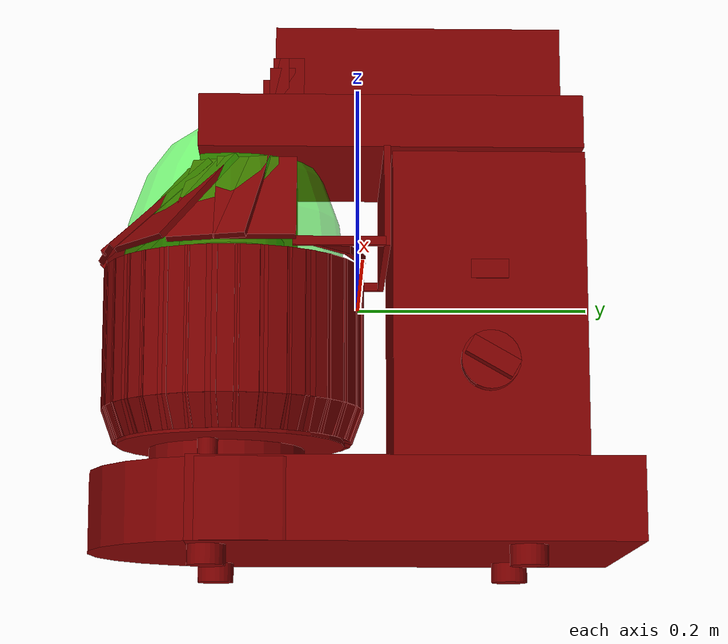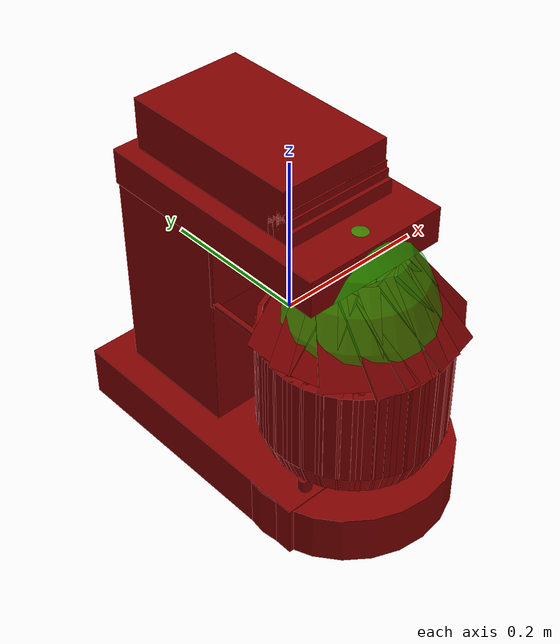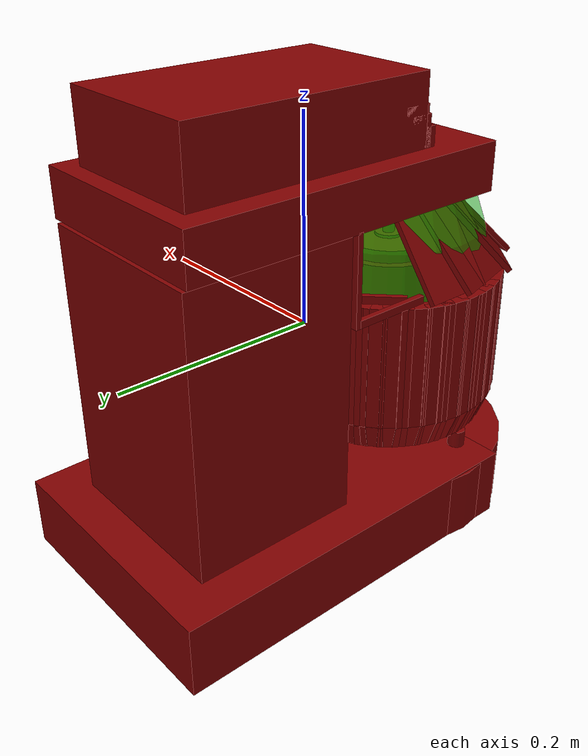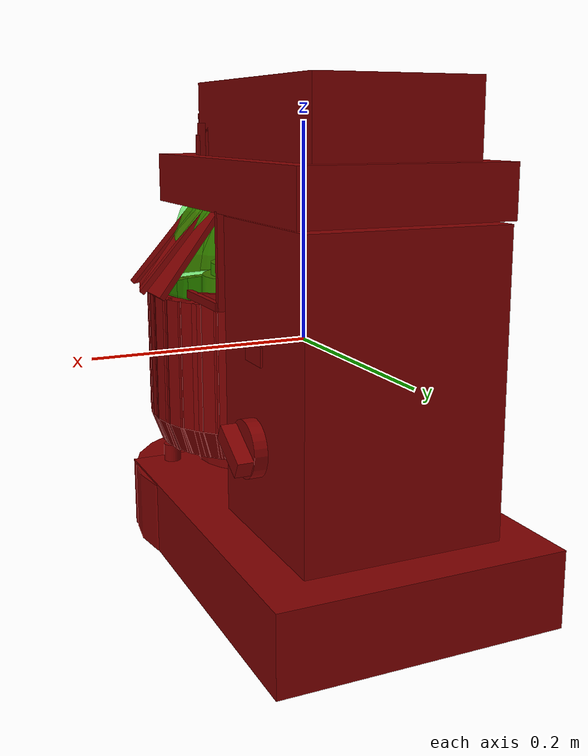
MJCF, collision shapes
<?xml version='1.0' encoding='UTF-8'?>
<mujoco model="model">
  <option timestep="0.002" gravity="0.0 0.0 -9.81"/>
  <compiler angle="radian"/>
  <asset>
    <mesh file="visuals/blender.obj" name="blender_vis"/>
    <mesh file="visuals/bowl.obj" name="bowl_vis"/>
    <mesh file="visuals/button_head_lock.obj" name="button_head_lock_vis"/>
    <mesh file="visuals/head.obj" name="head_vis"/>
    <mesh file="visuals/knob_speed.obj" name="knob_speed_vis"/>
    <mesh file="visuals/Body001.obj" name="Body001_vis"/>
    <texture file="visuals/T_BC001.png" name="Body001_material" type="2d"/>
    <material name="Body001_material" rgba="1 1 1 1.0" texture="Body001_material" shininess="0.4472135901451111" specular="0.3103448502657381"/>
    <texture file="visuals/T_BC001.png" name="bowl_material" type="2d"/>
    <material name="bowl_material" rgba="1 1 1 1.0" texture="bowl_material" shininess="1" specular="1"/>
    <texture file="visuals/T_BC001.png" name="button_head_lock_material" type="2d"/>
    <material name="button_head_lock_material" rgba="1 1 1 1.0" texture="button_head_lock_material" shininess="0.4472135901451111" specular="0.3103448502657381"/>
    <texture file="visuals/T_BC001.png" name="head_material" type="2d"/>
    <material name="head_material" rgba="1 1 1 1.0" texture="head_material" shininess="0.4472135901451111" specular="0.3103448502657381"/>
    <texture file="visuals/T_BC001.png" name="blender_material" type="2d"/>
    <material name="blender_material" rgba="1 1 1 1.0" texture="blender_material" shininess="1" specular="1"/>
    <texture file="visuals/T_BC001.png" name="knob_speed_material" type="2d"/>
    <material name="knob_speed_material" rgba="1 1 1 1.0" texture="knob_speed_material" shininess="0.4472135901451111" specular="0.3103448502657381"/>
  </asset>
  <default>
    <default class="visual">
      <geom conaffinity="0" contype="0" group="1" type="mesh"/>
    </default>
    <default class="collision">
      <geom group="0" rgba="0.5 0 0 0.5"/>
    </default>
    <default class="spawn">
      <geom group="0" rgba="1 1 1 0.5" contype="0" conaffinity="0"/>
      <site group="0" rgba="1 1 1 0.5"/>
    </default>
    <default class="region">
      <geom group="1" conaffinity="0" contype="0" rgba="0 1 0 0"/>
    </default>
  </default>
  <worldbody>
    <body>
      <body name="object">
        <geom mesh="Body001_vis" type="mesh" solimp="0.998 0.998 0.001" solref="0.001 1" friction="0.95 0.3 0.1" class="visual" material="Body001_material"/>
        <geom type="box" pos="-0.0020150209311395884 0.10966469347476959 -0.011680183932185173" size="0.09030012786388397 0.0818587988615036 0.13259609043598175" quat="1.0 0.0 0.0 0.0" class="collision"/>
        <geom type="cylinder" pos="-0.09157982468605042 -0.12557129561901093 -0.21869555115699768" size="0.01601528935134411 0.011921694502234459" quat="1.0 0.0 0.0 0.0" class="collision"/>
        <geom type="cylinder" pos="-0.09157982468605042 0.13837343454360962 -0.21869555115699768" size="0.01601528935134411 0.011921694502234459" quat="1.0 0.0 0.0 0.0" class="collision"/>
        <geom type="cylinder" pos="0.0929291695356369 0.13837343454360962 -0.21869555115699768" size="0.01601528935134411 0.011921694502234459" quat="1.0 0.0 0.0 0.0" class="collision"/>
        <geom type="cylinder" pos="0.0929291695356369 -0.12557129561901093 -0.21869555115699768" size="0.01601528935134411 0.011921694502234459" quat="1.0 0.0 0.0 0.0" class="collision"/>
        <geom type="cylinder" pos="-0.09143412858247757 -0.12539009749889374 -0.1359458714723587" size="0.008488369174301624 0.009389183484017849" quat="1.0 0.0 0.0 0.0" class="collision"/>
        <geom type="cylinder" pos="0.09264079481363297 -0.12539009749889374 -0.1359458714723587" size="0.008488369174301624 0.009389183484017849" quat="1.0 0.0 0.0 0.0" class="collision"/>
        <geom type="cylinder" pos="-0.00843361858278513 -0.12539009749889374 -0.1359458714723587" size="0.008488369174301624 0.009389183484017849" quat="1.0 0.0 0.0 0.0" class="collision"/>
        <geom type="cylinder" pos="-0.001985041191801429 -0.11356186866760254 -0.14867164194583893" size="0.06737740337848663 0.02544773928821087" quat="1.0 0.0 0.0 0.0" class="collision"/>
        <geom type="box" pos="-0.0006400577840395272 0.04438207298517227 -0.178863063454628" size="0.1297663003206253 0.18647709488868713 0.03476670756936073" quat="1.0 0.0 0.0 0.0" class="collision"/>
        <geom type="cylinder" pos="0.0007358510629273951 -0.09750024229288101 -0.17969581484794617" size="0.13394969701766968 0.033853307366371155" quat="1.0 0.0 0.0 0.0" class="collision"/>
        <body name="bowl">
          <geom mesh="bowl_vis" type="mesh" solimp="0.998 0.998 0.001" solref="0.001 1" friction="0.95 0.3 0.1" class="visual" material="bowl_material"/>
          <geom type="box" pos="0.10189328342676163 -0.11322380602359772 -0.10233451426029205" size="0.013965840451419353 0.0066327000968158245 0.015045318752527237" quat="0.7120574712753296 0.12730690836906433 0.12152275443077087 0.6797053217887878" class="collision"/>
          <geom type="box" pos="0.09313759207725525 -0.1500387042760849 -0.10233451426029205" size="0.013965838588774204 0.00663269916549325 0.015045315958559513" quat="0.8260143995285034 0.14768095314502716 0.09573482722043991 0.5354674458503723" class="collision"/>
          <geom type="box" pos="0.09738185256719589 -0.1519366353750229 -0.028676670044660568" size="0.01396583765745163 0.006632702890783548 0.06229601800441742" quat="0.8391123414039612 0.0 0.0 0.5439581871032715" class="collision"/>
          <geom type="cylinder" pos="0.00023518240777775645 -0.11029031872749329 -0.11285266280174255" size="0.09875737875699997 0.00806751474738121" quat="1.0 0.0 0.0 0.0" class="collision"/>
          <geom type="box" pos="0.021402928978204727 -0.20803727209568024 -0.10233448445796967" size="0.013965836726129055 0.00663269916549325 0.015045316889882088" quat="0.9789935350418091 0.1750316321849823 0.018404554575681686 0.10294099152088165" class="collision"/>
          <geom type="box" pos="0.06026076897978783 -0.1963675171136856 -0.028676670044660568" size="0.01396583765745163 0.006632702890783548 0.06229601800441742" quat="0.9554409384727478 0.0 0.0 0.29518234729766846" class="collision"/>
          <geom type="box" pos="0.05763828754425049 -0.19252844154834747 -0.10233451426029205" size="0.013965838588774204 0.006632699631154537 0.015045318752527237" quat="0.9405272603034973 0.16815443336963654 0.05195111781358719 0.2905747592449188" class="collision"/>
          <geom type="box" pos="0.08464417606592178 -0.1653444468975067 -0.10233451426029205" size="0.013965838588774204 0.0066327000968158245 0.015045316889882088" quat="0.8690050840377808 0.15536712110042572 0.08267930895090103 0.4624449908733368" class="collision"/>
          <geom type="box" pos="0.08850041776895523 -0.1679416447877884 -0.028676670044660568" size="0.01396583765745163 0.006632702890783548 0.06229601800441742" quat="0.8827846646308899 0.0 0.0 0.469777911901474" class="collision"/>
          <geom type="box" pos="0.10429301112890244 -0.13077999651432037 -0.028676677495241165" size="0.013965839520096779 0.006632703822106123 0.06229601800441742" quat="0.7776281237602234 0.0 0.0 0.6287245154380798" class="collision"/>
          <geom type="box" pos="0.09974677860736847 -0.12980639934539795 -0.10233451426029205" size="0.01396583765745163 0.006632699631154537 0.015045315958559513" quat="0.765489935874939 0.1368599534034729 0.11065340042114258 0.6189106106758118" class="collision"/>
          <geom type="box" pos="0.10065349191427231 -0.09197548031806946 -0.10233451426029205" size="0.013965839520096779 0.006632699631154537 0.015045316889882088" quat="0.6370744109153748 0.11390084028244019 0.1341693252325058 0.750440776348114" class="collision"/>
          <geom type="box" pos="0.10524114221334457 -0.09122078120708466 -0.028676670044660568" size="0.013965841382741928 0.00663270428776741 0.06229601800441742" quat="0.6471763253211975 0.0 0.0 0.7623403668403625" class="collision"/>
          <geom type="box" pos="0.07420507073402405 -0.18500061333179474 -0.028676670044660568" size="0.013965839520096779 0.006632703822106123 0.06229601800441742" quat="0.9270707368850708 0.0 0.0 0.3748863935470581" class="collision"/>
          <geom type="box" pos="0.0904875099658966 -0.0521109402179718 -0.028676670044660568" size="0.013965836726129055 0.006632702425122261 0.06229601800441742" quat="0.4848506450653076 0.0 0.0 0.8745969533920288" class="collision"/>
          <geom type="box" pos="0.08654442429542542 -0.05457431823015213 -0.10233451426029205" size="0.01396583765745163 0.006632699631154537 0.015045316889882088" quat="0.4772825241088867 0.08533207327127457 0.15392613410949707 0.8609451651573181" class="collision"/>
          <geom type="box" pos="0.022369982674717903 -0.21258492767810822 -0.028676670044660568" size="0.013965839520096779 0.006632703822106123 0.06229601800441742" quat="0.9945171475410461 0.0 0.0 0.10457359999418259" class="collision"/>
          <geom type="box" pos="0.061737511307001114 -0.02741362899541855 -0.10233451426029205" size="0.013965836726129055 0.0066327000968158245 0.015045316889882088" quat="0.3138279318809509 0.056108467280864716 0.1668132245540619 0.9330258369445801" class="collision"/>
          <geom type="box" pos="0.06454727053642273 -0.023709386587142944 -0.028676677495241165" size="0.013965836726129055 0.006632702425122261 0.06229601800441742" quat="0.31880423426628113 0.0 0.0 0.9478206038475037" class="collision"/>
          <geom type="box" pos="0.026318933814764023 -0.005323871970176697 -0.028676670044660568" size="0.01396583765745163 0.006632702890783548 0.06229601800441742" quat="0.12349949777126312 0.0 0.0 0.9923446178436279" class="collision"/>
          <geom type="box" pos="0.025179345160722733 -0.009831339120864868 -0.10233451426029205" size="0.01396583765745163 0.006632698699831963 0.015045315958559513" quat="0.12157176434993744 0.02173551917076111 0.17464932799339294 0.9768549203872681" class="collision"/>
          <geom type="box" pos="-0.012225277721881866 -0.007492713630199432 -0.10233451426029205" size="0.013965840451419353 0.006632700562477112 0.015045315958559513" quat="0.06037798523902893 0.010794822126626968 -0.17566528916358948 -0.9825373888015747" class="collision"/>
          <geom type="box" pos="-0.012794534675776958 -0.0028783977031707764 -0.028676670044660568" size="0.013965840451419353 0.006632703822106123 0.06229601800441742" quat="0.061335381120443344 0.0 0.0 -0.998117208480835" class="collision"/>
          <geom type="box" pos="-0.05263176187872887 -0.0161384716629982 -0.028676677495241165" size="0.013965838588774204 0.006632703356444836 0.06229601800441742" quat="0.25702959299087524 0.0 0.0 -0.9664035439491272" class="collision"/>
          <geom type="box" pos="0.07097336649894714 -0.18165814876556396 -0.10233451426029205" size="0.013965836726129055 0.0066327000968158245 0.015045316889882088" quat="0.9125999212265015 0.16316133737564087 0.0659787505865097 0.36903467774391174" class="collision"/>
          <geom type="box" pos="-0.0503220334649086 -0.020173467695713043 -0.10233451426029205" size="0.013965840451419353 0.0066327000968158245 0.015045316889882088" quat="0.2530176639556885 0.04523634538054466 -0.17008377611637115 -0.9513186812400818" class="collision"/>
          <geom type="box" pos="-0.07794873416423798 -0.04334898293018341 -0.10233451426029205" size="0.013965839520096779 0.0066327000968158245 0.015045316889882088" quat="0.417558878660202 0.07465425878763199 -0.15937866270542145 -0.8914425373077393" class="collision"/>
          <geom type="box" pos="-0.08152057975530624 -0.04037274420261383 -0.028676670044660568" size="0.013965839520096779 0.006632703822106123 0.06229601800441742" quat="0.4241800010204315 0.0 0.0 -0.9055778980255127" class="collision"/>
          <geom type="box" pos="-0.10010028630495071 -0.07303456962108612 -0.028676670044660568" size="0.013965836726129055 0.006632702425122261 0.06229601800441742" quat="0.5773990154266357 0.0 0.0 -0.8164620995521545" class="collision"/>
          <geom type="box" pos="-0.095716692507267 -0.07458384335041046 -0.10233451426029205" size="0.013965836726129055 0.0066327000968158245 0.015045316889882088" quat="0.5683863162994385 0.10162027180194855 -0.14369459450244904 -0.8037177324295044" class="collision"/>
          <geom type="box" pos="-0.10152013599872589 -0.11010442674160004 -0.10233451426029205" size="0.013965838588774204 0.006632700562477112 0.015045316889882088" quat="0.7015516757965088 0.12542855739593506 -0.12346050143241882 -0.6905435919761658" class="collision"/>
          <geom type="box" pos="-0.10616885870695114 -0.11017793416976929 -0.028676670044660568" size="0.013965838588774204 0.006632703356444836 0.06229601800441742" quat="0.712675929069519 0.0 0.0 -0.7014934420585632" class="collision"/>
          <geom type="box" pos="-0.09911313652992249 -0.1466338187456131 -0.028676670044660568" size="0.013965840451419353 0.006632703822106123 0.06229601800441742" quat="0.8241325616836548 0.0 0.0 -0.5663970112800598" class="collision"/>
          <geom type="box" pos="-0.09477266669273376 -0.14496755599975586 -0.10233451426029205" size="0.013965836726129055 0.006632699631154537 0.015045318752527237" quat="0.8112683892250061 0.14504455029964447 -0.09968403726816177 -0.5575560927391052" class="collision"/>
          <geom type="box" pos="-0.074417345225811 -0.17765958607196808 -0.10233451426029205" size="0.013965839520096779 0.0066327000968158245 0.015045316889882088" quat="0.9021095633506775 0.16128577291965485 -0.0704394057393074 -0.39398422837257385" class="collision"/>
          <geom type="box" pos="0.03890387341380119 -0.202630415558815 -0.10233448445796967" size="0.013965840451419353 0.006632699631154537 0.015045318752527237" quat="0.965756893157959 0.17266513407230377 0.03408178314566612 0.19062745571136475" class="collision"/>
          <geom type="box" pos="-0.07782787829637527 -0.18081939220428467 -0.028676677495241165" size="0.013965838588774204 0.006632703356444836 0.06229601800441742" quat="0.9164140224456787 0.0 0.0 -0.40023157000541687" class="collision"/>
          <geom type="box" pos="-0.048105597496032715 -0.2032991498708725 -0.028676670044660568" size="0.01396583765745163 0.006632702890783548 0.06229601800441742" quat="0.9723350405693054 0.0 0.0 -0.23359063267707825" class="collision"/>
          <geom type="box" pos="-0.045993611216545105 -0.19915719330310822 -0.10233451426029205" size="0.013965839520096779 0.006632700562477112 0.015045318752527237" quat="0.9571576714515686 0.17112773656845093 -0.04111115261912346 -0.2299443483352661" class="collision"/>
          <geom type="box" pos="-0.014120768755674362 -0.20924539864063263 -0.10233451426029205" size="0.013965841382741928 0.006632700562477112 0.015045318752527237" quat="0.9819267988204956 0.17555609345436096 -0.012444666586816311 -0.06960588693618774" class="collision"/>
          <geom type="box" pos="-0.014776633121073246 -0.21384824812412262 -0.028676670044660568" size="0.01396583765745163 0.006632702890783548 0.06229601800441742" quat="0.9974969625473022 0.0 0.0 -0.07070967555046082" class="collision"/>
          <geom type="box" pos="-0.036361776292324066 -0.20842157304286957 -0.028676677495241165" size="0.013965838588774204 0.006632703356444836 0.06229601800441742" quat="0.9846334457397461 0.0 0.0 -0.1746336817741394" class="collision"/>
          <geom type="box" pos="-0.03476287052035332 -0.20405586063861847 -0.10233451426029205" size="0.013965836726129055 0.00663269916549325 0.015045317821204662" quat="0.9692639708518982 0.17329254746437073 -0.030735071748495102 -0.17190803587436676" class="collision"/>
          <geom type="box" pos="-0.06384027004241943 -0.18755872547626495 -0.10233451426029205" size="0.013965839520096779 0.0066327000968158245 0.015045320615172386" quat="0.927863597869873 0.16589036583900452 -0.05878116562962532 -0.3287770748138428" class="collision"/>
          <geom type="box" pos="-0.06676758825778961 -0.1911708265542984 -0.028676677495241165" size="0.01396583765745163 0.006632702890783548 0.06229601800441742" quat="0.9425765872001648 0.0 0.0 -0.3339901566505432" class="collision"/>
          <geom type="box" pos="-0.0911640077829361 -0.1630004495382309 -0.028676670044660568" size="0.013965839520096779 0.006632703822106123 0.06229601800441742" quat="0.8695359230041504 0.0 0.0 -0.49386975169181824" class="collision"/>
          <geom type="box" pos="0.04067046567797661 -0.206931009888649 -0.028676677495241165" size="0.013965839520096779 0.006632703822106123 0.06229601800441742" quat="0.9810706377029419 0.0 0.0 0.19365014135837555" class="collision"/>
          <geom type="box" pos="-0.08717083185911179 -0.16061915457248688 -0.10233451426029205" size="0.013965839520096779 0.006632699631154537 0.015045316889882088" quat="0.8559631109237671 0.15303540229797363 -0.08691941201686859 -0.4861608147621155" class="collision"/>
          <geom type="box" pos="-0.1002810150384903 -0.12440823018550873 -0.10233451426029205" size="0.013965836726129055 0.006632701028138399 0.015045316889882088" quat="0.7485148310661316 0.13382500410079956 -0.11430522799491882 -0.6393361687660217" class="collision"/>
          <geom type="box" pos="-0.10487311333417892 -0.12513522803783417 -0.028676670044660568" size="0.013965836726129055 0.006632702425122261 0.06229601800441742" quat="0.7603838443756104 0.0 0.0 -0.6494739651679993" class="collision"/>
          <geom type="box" pos="-0.10419172793626785 -0.08800908923149109 -0.028676670044660568" size="0.013965836726129055 0.006632702425122261 0.06229601800441742" quat="0.6354108452796936 0.0 0.0 -0.7721742391586304" class="collision"/>
          <geom type="box" pos="-0.09962937980890274 -0.08890409767627716 -0.10233451426029205" size="0.013965840451419353 0.006632699631154537 0.015045315958559513" quat="0.6254926919937134 0.11183018237352371 -0.13590008020401 -0.7601211071014404" class="collision"/>
          <geom type="box" pos="-0.08656459301710129 -0.05536751449108124 -0.10233451426029205" size="0.013965838588774204 0.0066327000968158245 0.015045316889882088" quat="0.4812224805355072 0.08603650331497192 -0.15353348851203918 -0.8587491512298584" class="collision"/>
          <geom type="box" pos="-0.09053006768226624 -0.05294034630060196 -0.028676670044660568" size="0.013965838588774204 0.006632703356444836 0.06229601800441742" quat="0.4888530969619751 0.0 0.0 -0.8723661303520203" class="collision"/>
          <geom type="box" pos="-0.06556304544210434 -0.02485746145248413 -0.028676670044660568" size="0.013965838588774204 0.006632703356444836 0.06229601800441742" quat="0.3271549344062805 0.0 0.0 -0.9449707269668579" class="collision"/>
          <geom type="box" pos="-0.06268836557865143 -0.028511539101600647 -0.10233451426029205" size="0.013965839520096779 0.006632700562477112 0.015045315958559513" quat="0.3220481872558594 0.05757814273238182 -0.16631169617176056 -0.9302204847335815" class="collision"/>
          <geom type="box" pos="-0.03084539622068405 -0.011589251458644867 -0.10233451426029205" size="0.013965841382741928 0.006632699631154537 0.015045318752527237" quat="0.15214776992797852 0.027202147990465164 -0.1738818734884262 -0.9725616574287415" class="collision"/>
          <geom type="box" pos="0.00023517990484833717 -0.21026302874088287 -0.10233448445796967" size="0.013965838588774204 0.006632700562477112 0.015045320615172386" quat="0.9843907356262207 0.17599669098854065 -3.907928115478584e-17 1.2584044844161278e-23" class="collision"/>
          <geom type="box" pos="-0.0322653166949749 -0.007162079215049744 -0.028676670044660568" size="0.013965841382741928 0.00663270428776741 0.06229601800441742" quat="0.15456034243106842 0.0 0.0 -0.9879833459854126" class="collision"/>
          <geom type="box" pos="0.00945871789008379 -0.002478167414665222 -0.028676670044660568" size="0.013965838588774204 0.006632703356444836 0.06229601800441742" quat="0.04337745159864426 0.0 0.0 0.9990587830543518" class="collision"/>
          <geom type="box" pos="0.009055743925273418 -0.007109969854354858 -0.10233451426029205" size="0.013965838588774204 0.00663269916549325 0.015045317821204662" quat="0.04270035773515701 0.00763430492952466 0.17583119869232178 0.9834641814231873" class="collision"/>
          <geom type="box" pos="0.0451558418571949 -0.01717764139175415 -0.10233451426029205" size="0.013965839520096779 0.00663269916549325 0.015045320615172386" quat="0.22305823862552643 0.039880018681287766 0.17141884565353394 0.9587857723236084" class="collision"/>
          <geom type="box" pos="0.047208067029714584 -0.013005778193473816 -0.028676670044660568" size="0.013965839520096779 0.006632703822106123 0.06229601800441742" quat="0.2265952229499817 0.0 0.0 0.9739890098571777" class="collision"/>
          <geom type="box" pos="0.08077610284090042 -0.0389406681060791 -0.028676670044660568" size="0.013965839520096779 0.006632703822106123 0.06229601800441742" quat="0.4161731004714966 0.0 0.0 0.9092854261398315" class="collision"/>
          <geom type="box" pos="0.07725732028484344 -0.041979461908340454 -0.10233451426029205" size="0.013965839520096779 0.0066327000968158245 0.015045316889882088" quat="0.40967684984207153 0.07324506342411041 0.16003122925758362 0.8950921893119812" class="collision"/>
          <geom type="box" pos="0.09587226063013077 -0.07370595633983612 -0.10233451426029205" size="0.013965836726129055 0.006632699631154537 0.015045318752527237" quat="0.5646975040435791 0.10096082091331482 0.144158735871315 0.8063137531280518" class="collision"/>
          <geom type="box" pos="0.10024146735668182 -0.07211661338806152 -0.028676670044660568" size="0.013965836726129055 0.006632702425122261 0.06229601800441742" quat="0.5736517310142517 0.0 0.0 0.8190993070602417" class="collision"/>
          <geom type="box" pos="0.10653755813837051 -0.11343982815742493 -0.028676670044660568" size="0.01396583765745163 0.006632702890783548 0.06229601800441742" quat="0.7233484387397766 0.0 0.0 0.6904832124710083" class="collision"/>
          <geom type="box" pos="0.00023517990484833717 -0.21491236984729767 -0.028676670044660568" size="0.013965838588774204 0.006632703356444836 0.06229601800441742" quat="1.0 0.0 0.0 0.0" class="collision"/>
          <geom name="reg_bowl" type="ellipsoid" pos="0.0002351822331547737 -0.109382763504982 0.034054793417453766" size="0.09605401754379272 0.097884401679039 0.1370994597673416" rgba="0 1 0 0.5" class="region"/>
        </body>
        <body name="button_head_lock">
          <joint axis="-1.0 0.0 0.0" pos="0.09190913289785385 0.10892479121685028 0.017827346920967102" limited="true" name="button_head_lock_joint" range="0.0 0.0015" type="slide" damping="1" frictionloss="1" armature=".01" stiffness="0.05"/>
          <geom mesh="button_head_lock_vis" type="mesh" solimp="0.998 0.998 0.001" solref="0.001 1" friction="0.95 0.3 0.1" class="visual" material="button_head_lock_material"/>
          <geom class="collision" type="box" pos="0.09451240301132202 0.10884135216474533 0.017717504873871803" size="0.0010479416232556105 0.01577267050743103 0.00806450191885233" quat="1.0 0.0 0.0 0.0" name="button_head_lock_main"/>
        </body>
        <body name="head">
          <joint axis="-1.0 0.0 0.0" pos="0.003621272509917617 0.18859846889972687 0.12621155381202698" limited="true" name="head_joint" range="0.0 1.5707963267948966" type="hinge" damping="1" frictionloss="1" armature=".01" stiffness="0.05"/>
          <geom mesh="head_vis" type="mesh" solimp="0.998 0.998 0.001" solref="0.001 1" friction="0.95 0.3 0.1" class="visual" material="head_material"/>
          <geom type="box" pos="-0.001328813610598445 0.026462554931640625 0.14599385857582092" size="0.09517229348421097 0.1636313945055008 0.022937024012207985" quat="1.0 0.0 0.0 0.0" class="collision"/>
          <geom type="box" pos="4.78647998534143e-05 -0.06080763041973114 0.18801355361938477" size="0.07387419044971466 0.013172413222491741 0.019035594537854195" quat="1.0 0.0 0.0 0.0" class="collision"/>
          <geom type="box" pos="4.78647998534143e-05 0.050475552678108215 0.2016994208097458" size="0.07387419044971466 0.1224902793765068 0.032721444964408875" quat="1.0 0.0 0.0 0.0" class="collision"/>
          <geom type="box" pos="4.78647998534143e-05 -0.06735362112522125 0.18801355361938477" size="0.07387419044971466 0.006761389318853617 0.019035594537854195" quat="1.0 0.0 0.0 0.0" class="collision"/>
          <geom type="box" pos="4.78647998534143e-05 -0.07674458622932434 0.17815126478672028" size="0.07387419044971466 0.006002186797559261 0.009173284284770489" quat="1.0 0.0 0.0 0.0" class="collision"/>
          <geom type="box" pos="4.78647998534143e-05 -0.066293865442276 0.18358752131462097" size="0.07387419044971466 0.010829201899468899 0.014609532430768013" quat="1.0 0.0 0.0 0.0" class="collision"/>
          <geom type="box" pos="0.09245838224887848 -0.01736270636320114 0.04113068804144859" size="0.0027169263921678066 0.03912002220749855 0.0037242791149765253" quat="1.0 0.0 0.0 0.0" class="collision"/>
          <geom type="box" pos="-0.001328813610598445 0.023036610335111618 0.08092157542705536" size="0.09517229348421097 0.002696755575016141 0.043424759060144424" quat="1.0 0.0 0.0 0.0" class="collision"/>
          <geom type="box" pos="-0.09378419071435928 -0.01736270636320114 0.04113068804144859" size="0.0027169263921678066 0.03912002220749855 0.0037242791149765253" quat="1.0 0.0 0.0 0.0" class="collision"/>
          <geom type="box" pos="-0.07319995760917664 -0.029625937342643738 0.04113068804144859" size="0.0027169263921678066 0.020795566961169243 0.0037242791149765253" quat="0.9227108955383301 0.0 0.0 -0.3854927122592926" class="collision"/>
          <geom type="box" pos="-0.04002855718135834 -0.007736615836620331 0.04113068804144859" size="0.002716926857829094 0.02079557068645954 0.0037242791149765253" quat="0.837822437286377 0.0 0.0 -0.5459427833557129" class="collision"/>
          <geom type="box" pos="-0.0006694255862385035 0.0018757320940494537 0.04113068804144859" size="0.002716926857829094 0.020795568823814392 0.0037242791149765253" quat="0.7352935671806335 0.0 0.0 -0.6777487397193909" class="collision"/>
          <geom type="box" pos="0.04049614444375038 -0.003307454288005829 0.04113068804144859" size="0.0027169263921678066 0.020795565098524094 0.0037242791149765253" quat="0.5781680941581726 0.0 0.0 -0.8159176707267761" class="collision"/>
          <geom type="box" pos="0.0754881277680397 -0.023771516978740692 0.04113068804144859" size="0.0027169263921678066 0.020795566961169243 0.0037242791149765253" quat="0.42034149169921875 0.0 0.0 -0.9073659777641296" class="collision"/>
          <geom type="box" pos="-0.002869380870833993 -0.17646372318267822 0.07941456139087677" size="0.03435741737484932 0.002696757670491934 0.05819800868630409" quat="0.9129106998443604 -0.40815937519073486 9.062957397578455e-17 9.815488587912014e-24" class="collision"/>
          <geom type="box" pos="-0.0573975145816803 -0.15529786050319672 0.08139331638813019" size="0.03435741737484932 0.0026967579033225775 0.054849106818437576" quat="0.8775176405906677 -0.345663458108902 0.12181935459375381 -0.3092564642429352" class="collision"/>
          <geom type="box" pos="-0.07870510220527649 -0.08780740201473236 0.08140534162521362" size="0.03435741737484932 0.002696757670491934 0.05192197486758232" quat="0.6705660820007324 -0.22436828911304474 0.22436831891536713 -0.6705660820007324" class="collision"/>
          <geom type="box" pos="-0.07558850944042206 -0.11878924071788788 0.08101095259189606" size="0.03435742110013962 0.002696758136153221 0.052268557250499725" quat="0.5672957897186279 0.2008899748325348 0.2665899991989136 0.752826988697052" class="collision"/>
          <geom type="box" pos="-0.02643406391143799 -0.17646372318267822 0.07941456139087677" size="0.034357424825429916 0.00269675743766129 0.05819801241159439" quat="0.9145876169204712 -0.3882196545600891 0.04423206299543381 -0.10420415550470352" class="collision"/>
          <geom type="box" pos="0.035575054585933685 -0.17646372318267822 0.07941456139087677" size="0.03435741737484932 0.00269675743766129 0.05819800868630409" quat="0.38821929693222046 0.9145877957344055 0.1042041927576065 0.04423203319311142" class="collision"/>
          <geom type="box" pos="0.085704505443573 -0.11906881630420685 0.07975839078426361" size="0.034357406198978424 0.002696758368983865 0.05388029292225838" quat="0.20089006423950195 -0.5672956705093384 0.752826988697052 -0.2665901482105255" class="collision"/>
          <geom type="box" pos="0.0885564312338829 -0.08780740201473236 0.08046267926692963" size="0.03435741737484932 0.0026967579033225775 0.05310233309864998" quat="0.22436833381652832 0.6705661416053772 0.6705660223960876 0.22436827421188354" class="collision"/>
          <geom type="box" pos="0.06728053838014603 -0.15621985495090485 0.0801241397857666" size="0.03435741737484932 0.002696757670491934 0.05658446252346039" quat="0.3456633985042572 0.8775177001953125 0.30925649404525757 0.12181936204433441" class="collision"/>
          <geom type="box" pos="0.01201037596911192 -0.17646372318267822 0.07941456139087677" size="0.03435741737484932 0.00269675743766129 0.058198004961013794" quat="0.40815937519073486 0.9129106998443604 -8.554915682639614e-24 9.062957397578455e-17" class="collision"/>
          <body name="blender">
            <joint axis="0.0 0.0 1.0" pos="0.002795243402943015 -0.11111302673816681 0.034960873425006866" limited="false" name="blender_joint" range="0 360" type="hinge" damping="1" frictionloss="1" armature=".01" stiffness="0.05"/>
            <geom mesh="blender_vis" type="mesh" solimp="0.998 0.998 0.001" solref="0.001 1" friction="0.95 0.3 0.1" class="visual" material="blender_material"/>
            <geom type="cylinder" pos="0.0027952438686043024 -0.11111300438642502 0.08938224613666534" size="0.005836151540279388 0.026723826304078102" quat="1.0 0.0 0.0 0.0" class="collision"/>
            <geom type="cylinder" pos="0.0027952438686043024 -0.11111301183700562 0.05263470858335495" size="0.04610991105437279 0.007561697158962488" quat="1.0 0.0 0.0 0.0" class="collision"/>
            <geom type="cylinder" pos="0.0027952438686043024 -0.11111301183700562 0.056176893413066864" size="0.013604322448372841 0.006940186023712158" quat="1.0 0.0 0.0 0.0" class="collision"/>
            <geom type="cylinder" pos="0.0027952438686043024 -0.11111301183700562 -0.008721573278307915" size="0.0449167937040329 0.009293390437960625" quat="1.0 0.0 0.0 0.0" class="collision"/>
            <geom type="cylinder" pos="0.0027952438686043024 -0.11111301183700562 0.022189287468791008" size="0.05491243302822113 0.02572678215801716" quat="1.0 0.0 0.0 0.0" class="collision"/>
            <geom type="cylinder" pos="0.0027952436357736588 -0.11111301183700562 -0.025776680558919907" size="0.04001713916659355 0.008279640227556229" quat="1.0 0.0 0.0 0.0" class="collision"/>
            <geom type="cylinder" pos="0.002795243402943015 -0.11111301183700562 -0.03797990083694458" size="0.02850527875125408 0.005897809285670519" quat="1.0 0.0 0.0 0.0" class="collision"/>
            <geom type="cylinder" pos="0.002795243402943015 -0.11111301183700562 -0.04878636822104454" size="0.01759735494852066 0.005184714682400227" quat="1.0 0.0 0.0 0.0" class="collision"/>
          </body>
        </body>
        <body name="knob_speed">
          <joint axis="-1.0 0.0 0.0" pos="0.10591834783554077 0.10892479121685028 -0.060967087745666504" limited="true" name="knob_speed_joint" range="0.0 4.974188368183839" type="hinge" damping="0.05" armature="0.001"/>
          <geom mesh="knob_speed_vis" type="mesh" solimp="0.998 0.998 0.001" solref="0.001 1" friction="0.95 0.3 0.1" class="visual" material="knob_speed_material"/>
          <geom type="cylinder" pos="0.09889586269855499 0.1084667518734932 -0.06107860431075096" size="0.024719323962926865 0.005838913843035698" quat="0.7071068286895752 -0.0 0.7071067690849304 0.0" class="collision"/>
          <geom class="collision" type="box" pos="0.11128564924001694 0.10930505394935608 -0.0606585294008255" size="0.007459341082721949 0.007930416613817215 0.022051239386200905" quat="0.8656713962554932 0.5006126761436462 1.1115833065988877e-16 6.5158573652021226e-24" name="knob_speed_main"/>
        </body>
        <geom class="region" name="reg_main" type="box" pos="2.806384902243053e-09 0.0 0.0" size="0.13000981307029724 0.23113272881507874 0.2312367091178894"/>
      </body>
    </body>
  </worldbody>
  <actuator>
    <motor name="button_head_lock_joint_actuator" joint="button_head_lock_joint" gear="0.1"/>
    <motor name="head_joint_actuator" joint="head_joint" gear="10"/>
    <motor name="knob_speed_joint_actuator" joint="knob_speed_joint" gear="10"/>
    <motor name="blender_joint_actuator" joint="blender_joint" gear="10"/>
  </actuator>
</mujoco>
